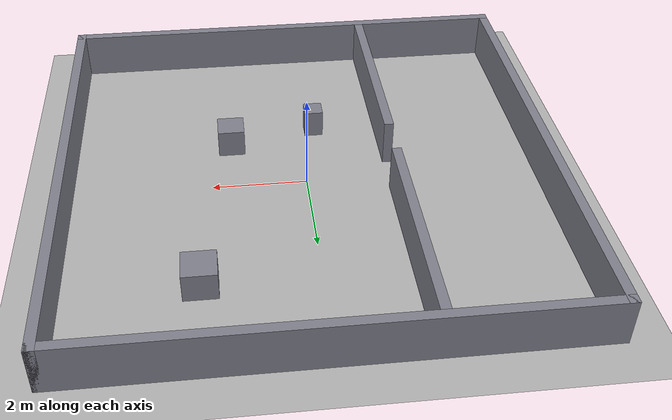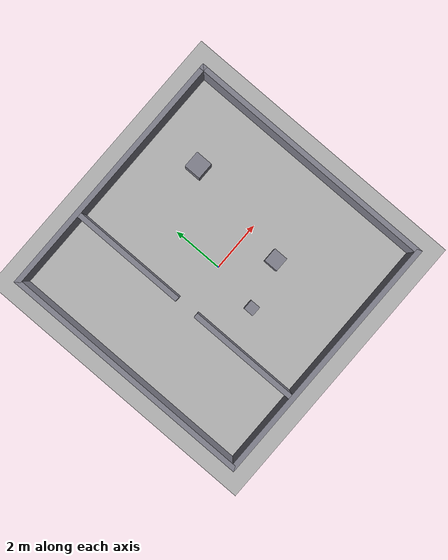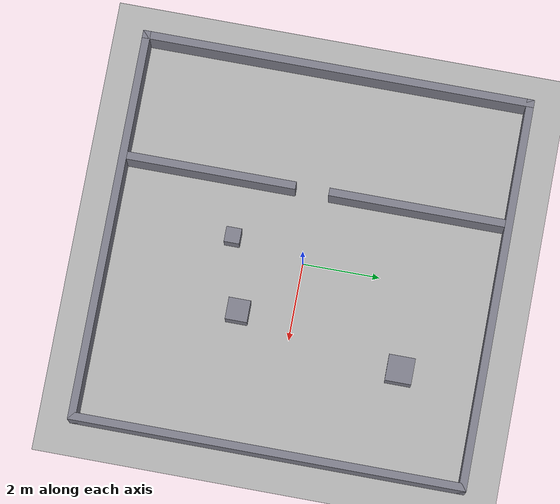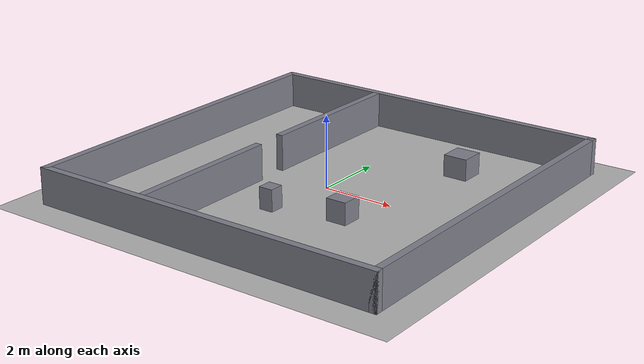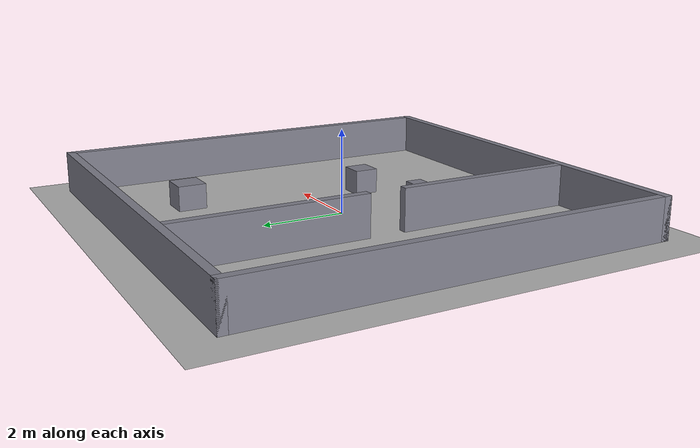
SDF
<?xml version="1.0"?>
<sdf version="1.10">
  <world name="scenario_18">
    <physics name="fast" type="ignored">
      <max_step_size>0.005</max_step_size>
      <real_time_factor>1.0</real_time_factor>
      <real_time_update_rate>200</real_time_update_rate>
    </physics>
    <plugin filename="gz-sim-physics-system" name="gz::sim::systems::Physics"/>
    <plugin filename="gz-sim-user-commands-system" name="gz::sim::systems::UserCommands"/>
    <plugin filename="gz-sim-scene-broadcaster-system" name="gz::sim::systems::SceneBroadcaster"/>
    <plugin filename="gz-sim-sensors-system" name="gz::sim::systems::Sensors">
      <render_engine>ogre2</render_engine>
    </plugin>
    <light type="directional" name="sun">
      <cast_shadows>false</cast_shadows>
      <pose>0 0 10 0 0 0</pose>
      <diffuse>0.9 0.9 0.9 1</diffuse>
      <direction>-0.5 0.2 -0.9</direction>
    </light>
    <model name="ground_plane">
      <static>true</static>
      <link name="link">
        <collision name="c"><geometry><plane><normal>0 0 1</normal><size>20 20</size></plane></geometry></collision>
        <visual name="v"><geometry><plane><normal>0 0 1</normal><size>20 20</size></plane></geometry>
          <material><ambient>0.7 0.7 0.7 1</ambient><diffuse>0.7 0.7 0.7 1</diffuse></material></visual>
      </link>
    </model>
    <model name="box_0">
      <static>true</static>
      <pose>0.0 5.0 0.5 0 0 0</pose>
      <link name="link">
        <collision name="c"><geometry><box><size>10.2 0.2 1.0</size></box></geometry></collision>
        <visual name="v"><geometry><box><size>10.2 0.2 1.0</size></box></geometry>
          <material><ambient>0.5 0.5 0.55 1</ambient><diffuse>0.5 0.5 0.55 1</diffuse></material></visual>
      </link>
    </model>
    <model name="box_1">
      <static>true</static>
      <pose>0.0 -5.0 0.5 0 0 0</pose>
      <link name="link">
        <collision name="c"><geometry><box><size>10.2 0.2 1.0</size></box></geometry></collision>
        <visual name="v"><geometry><box><size>10.2 0.2 1.0</size></box></geometry>
          <material><ambient>0.5 0.5 0.55 1</ambient><diffuse>0.5 0.5 0.55 1</diffuse></material></visual>
      </link>
    </model>
    <model name="box_2">
      <static>true</static>
      <pose>5.0 0.0 0.5 0 0 0</pose>
      <link name="link">
        <collision name="c"><geometry><box><size>0.2 10.2 1.0</size></box></geometry></collision>
        <visual name="v"><geometry><box><size>0.2 10.2 1.0</size></box></geometry>
          <material><ambient>0.5 0.5 0.55 1</ambient><diffuse>0.5 0.5 0.55 1</diffuse></material></visual>
      </link>
    </model>
    <model name="box_3">
      <static>true</static>
      <pose>-5.0 0.0 0.5 0 0 0</pose>
      <link name="link">
        <collision name="c"><geometry><box><size>0.2 10.2 1.0</size></box></geometry></collision>
        <visual name="v"><geometry><box><size>0.2 10.2 1.0</size></box></geometry>
          <material><ambient>0.5 0.5 0.55 1</ambient><diffuse>0.5 0.5 0.55 1</diffuse></material></visual>
      </link>
    </model>
    <model name="box_4">
      <static>true</static>
      <pose>-1.81 -2.7073580302456137 0.5 0 0 0</pose>
      <link name="link">
        <collision name="c"><geometry><box><size>0.2 4.385283939508773 1.0</size></box></geometry></collision>
        <visual name="v"><geometry><box><size>0.2 4.385283939508773 1.0</size></box></geometry>
          <material><ambient>0.5 0.5 0.55 1</ambient><diffuse>0.5 0.5 0.55 1</diffuse></material></visual>
      </link>
    </model>
    <model name="box_5">
      <static>true</static>
      <pose>-1.81 2.622641969754387 0.5 0 0 0</pose>
      <link name="link">
        <collision name="c"><geometry><box><size>0.2 4.554716060491227 1.0</size></box></geometry></collision>
        <visual name="v"><geometry><box><size>0.2 4.554716060491227 1.0</size></box></geometry>
          <material><ambient>0.5 0.5 0.55 1</ambient><diffuse>0.5 0.5 0.55 1</diffuse></material></visual>
      </link>
    </model>
    <model name="box_6">
      <static>true</static>
      <pose>-0.33 -1.88 0.3 0 0 0</pose>
      <link name="link">
        <collision name="c"><geometry><box><size>0.4 0.4 0.6</size></box></geometry></collision>
        <visual name="v"><geometry><box><size>0.4 0.4 0.6</size></box></geometry>
          <material><ambient>0.5 0.5 0.55 1</ambient><diffuse>0.5 0.5 0.55 1</diffuse></material></visual>
      </link>
    </model>
    <model name="box_7">
      <static>true</static>
      <pose>1.54 -1.4 0.3 0 0 0</pose>
      <link name="link">
        <collision name="c"><geometry><box><size>0.57 0.57 0.6</size></box></geometry></collision>
        <visual name="v"><geometry><box><size>0.57 0.57 0.6</size></box></geometry>
          <material><ambient>0.5 0.5 0.55 1</ambient><diffuse>0.5 0.5 0.55 1</diffuse></material></visual>
      </link>
    </model>
    <model name="box_8">
      <static>true</static>
      <pose>2.3 2.93 0.3 0 0 0</pose>
      <link name="link">
        <collision name="c"><geometry><box><size>0.68 0.68 0.6</size></box></geometry></collision>
        <visual name="v"><geometry><box><size>0.68 0.68 0.6</size></box></geometry>
          <material><ambient>0.5 0.5 0.55 1</ambient><diffuse>0.5 0.5 0.55 1</diffuse></material></visual>
      </link>
    </model>
  </world>
</sdf>
